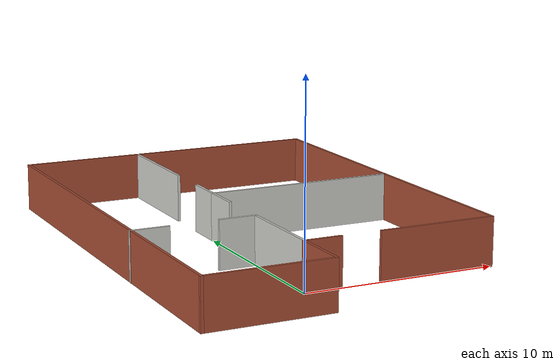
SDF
<?xml version='1.0'?>
<sdf version='1.6'>
  <model name='Building'>
    <pose frame=''>1.81588 8.675 0 0 -0 0</pose>
    <link name='Wall_30'>
      <collision name='Wall_30_Collision'>
        <geometry>
          <box>
            <size>10.15 0.15 2.5</size>
          </box>
        </geometry>
        <pose frame=''>0 0 1.25 0 -0 0</pose>
      </collision>
      <visual name='Wall_30_Visual'>
        <pose frame=''>0 0 1.25 0 -0 0</pose>
        <geometry>
          <box>
            <size>10.15 0.15 2.5</size>
          </box>
        </geometry>
        <material>
          <script>
            <uri>file://media/materials/scripts/gazebo.material</uri>
            <name>Gazebo/CeilingTiled</name>
          </script>
          <ambient>0.203922 0.396078 0.643137 1</ambient>
        </material>
        <meta>
          <layer>0</layer>
        </meta>
      </visual>
      <pose frame=''>3.18412 1.325 0 0 -0 0</pose>
    </link>
    <link name='Wall_34'>
      <collision name='Wall_34_Collision'>
        <geometry>
          <box>
            <size>10.15 0.15 2.5</size>
          </box>
        </geometry>
        <pose frame=''>0 0 1.25 0 -0 0</pose>
      </collision>
      <visual name='Wall_34_Visual'>
        <pose frame=''>0 0 1.25 0 -0 0</pose>
        <geometry>
          <box>
            <size>10.15 0.15 2.5</size>
          </box>
        </geometry>
        <material>
          <script>
            <uri>file://media/materials/scripts/gazebo.material</uri>
            <name>Gazebo/Bricks</name>
          </script>
          <ambient>1 1 1 1</ambient>
        </material>
        <meta>
          <layer>0</layer>
        </meta>
      </visual>
      <pose frame=''>8.18412 -3.675 0 0 -0 -1.5708</pose>
    </link>
    <link name='Wall_36'>
      <collision name='Wall_36_Collision'>
        <geometry>
          <box>
            <size>6.15 0.15 2.5</size>
          </box>
        </geometry>
        <pose frame=''>0 0 1.25 0 -0 0</pose>
      </collision>
      <visual name='Wall_36_Visual'>
        <pose frame=''>0 0 1.25 0 -0 0</pose>
        <geometry>
          <box>
            <size>6.15 0.15 2.5</size>
          </box>
        </geometry>
        <material>
          <script>
            <uri>file://media/materials/scripts/gazebo.material</uri>
            <name>Gazebo/Bricks</name>
          </script>
          <ambient>1 1 1 1</ambient>
        </material>
        <meta>
          <layer>0</layer>
        </meta>
      </visual>
      <pose frame=''>5.18412 -8.675 0 0 -0 3.14159</pose>
    </link>
    <link name='Wall_38'>
      <collision name='Wall_38_Collision'>
        <geometry>
          <box>
            <size>5.2029 0.15 2.5</size>
          </box>
        </geometry>
        <pose frame=''>0 0 1.25 0 -0 0</pose>
      </collision>
      <visual name='Wall_38_Visual'>
        <pose frame=''>0 0 1.25 0 -0 0</pose>
        <geometry>
          <box>
            <size>5.2029 0.15 2.5</size>
          </box>
        </geometry>
        <material>
          <script>
            <uri>file://media/materials/scripts/gazebo.material</uri>
            <name>Gazebo/CeilingTiled</name>
          </script>
          <ambient>0.203922 0.396078 0.643137 1</ambient>
        </material>
        <meta>
          <layer>0</layer>
        </meta>
      </visual>
      <pose frame=''>-1.81588 -6.14855 0 0 -0 1.5708</pose>
    </link>
    <link name='Wall_40'>
      <collision name='Wall_40_Collision'>
        <geometry>
          <box>
            <size>2 0.15 2.5</size>
          </box>
        </geometry>
        <pose frame=''>0 0 1.25 0 -0 0</pose>
      </collision>
      <visual name='Wall_40_Visual'>
        <pose frame=''>0 0 1.25 0 -0 0</pose>
        <geometry>
          <box>
            <size>2 0.15 2.5</size>
          </box>
        </geometry>
        <material>
          <script>
            <uri>file://media/materials/scripts/gazebo.material</uri>
            <name>Gazebo/Bricks</name>
          </script>
          <ambient>1 1 1 1</ambient>
        </material>
        <meta>
          <layer>0</layer>
        </meta>
      </visual>
      <pose frame=''>-0.890877 -8.675 0 0 -0 0</pose>
    </link>
    <link name='Wall_42'>
      <collision name='Wall_42_Collision'>
        <geometry>
          <box>
            <size>3.15 0.15 2.5</size>
          </box>
        </geometry>
        <pose frame=''>0 0 1.25 0 -0 0</pose>
      </collision>
      <visual name='Wall_42_Visual'>
        <pose frame=''>0 0 1.25 0 -0 0</pose>
        <geometry>
          <box>
            <size>3.15 0.15 2.5</size>
          </box>
        </geometry>
        <material>
          <script>
            <uri>file://media/materials/scripts/gazebo.material</uri>
            <name>Gazebo/Bricks</name>
          </script>
          <ambient>1 1 1 1</ambient>
        </material>
        <meta>
          <layer>0</layer>
        </meta>
      </visual>
      <pose frame=''>-1.81588 -10.175 0 0 -0 -1.5708</pose>
    </link>
    <link name='Wall_44'>
      <collision name='Wall_44_Collision'>
        <geometry>
          <box>
            <size>6.5 0.15 2.5</size>
          </box>
        </geometry>
        <pose frame=''>0 0 1.25 0 -0 0</pose>
      </collision>
      <visual name='Wall_44_Visual'>
        <pose frame=''>0 0 1.25 0 -0 0</pose>
        <geometry>
          <box>
            <size>6.5 0.15 2.5</size>
          </box>
        </geometry>
        <material>
          <script>
            <uri>file://media/materials/scripts/gazebo.material</uri>
            <name>Gazebo/Bricks</name>
          </script>
          <ambient>1 1 1 1</ambient>
        </material>
        <meta>
          <layer>0</layer>
        </meta>
      </visual>
      <pose frame=''>-4.99088 -11.675 0 0 -0 3.14159</pose>
    </link>
    <link name='Wall_45'>
      <collision name='Wall_45_Collision'>
        <geometry>
          <box>
            <size>23.5 0.15 2.5</size>
          </box>
        </geometry>
        <pose frame=''>0 0 1.25 0 -0 0</pose>
      </collision>
      <visual name='Wall_45_Visual'>
        <pose frame=''>0 0 1.25 0 -0 0</pose>
        <geometry>
          <box>
            <size>23.5 0.15 2.5</size>
          </box>
        </geometry>
        <material>
          <script>
            <uri>file://media/materials/scripts/gazebo.material</uri>
            <name>Gazebo/Bricks</name>
          </script>
          <ambient>1 1 1 1</ambient>
        </material>
        <meta>
          <layer>0</layer>
        </meta>
      </visual>
      <pose frame=''>-8.16588 0 0 0 -0 1.5708</pose>
    </link>
    <link name='Wall_47'>
      <collision name='Wall_47_Collision'>
        <geometry>
          <box>
            <size>2.15 0.15 2.5</size>
          </box>
        </geometry>
        <pose frame=''>0 0 1.25 0 -0 0</pose>
      </collision>
      <visual name='Wall_47_Visual'>
        <pose frame=''>0 0 1.25 0 -0 0</pose>
        <geometry>
          <box>
            <size>2.15 0.15 2.5</size>
          </box>
        </geometry>
        <material>
          <script>
            <uri>file://media/materials/scripts/gazebo.material</uri>
            <name>Gazebo/CeilingTiled</name>
          </script>
          <ambient>0.203922 0.396078 0.643137 1</ambient>
        </material>
        <meta>
          <layer>0</layer>
        </meta>
      </visual>
      <pose frame=''>-1.81588 0.325 0 0 -0 1.5708</pose>
    </link>
    <link name='Wall_49'>
      <collision name='Wall_49_Collision'>
        <geometry>
          <box>
            <size>2 0.15 2.5</size>
          </box>
        </geometry>
        <pose frame=''>0 0 1.25 0 -0 0</pose>
      </collision>
      <visual name='Wall_49_Visual'>
        <pose frame=''>0 0 1.25 0 -0 0</pose>
        <geometry>
          <box>
            <size>2 0.15 2.5</size>
          </box>
        </geometry>
        <material>
          <script>
            <uri>file://media/materials/scripts/gazebo.material</uri>
            <name>Gazebo/CeilingTiled</name>
          </script>
          <ambient>0.203922 0.396078 0.643137 1</ambient>
        </material>
        <meta>
          <layer>0</layer>
        </meta>
      </visual>
      <pose frame=''>-7.25912 -3.70088 0 0 -0 0</pose>
    </link>
    <link name='Wall_51'>
      <collision name='Wall_51_Collision'>
        <geometry>
          <box>
            <size>2 0.15 2.5</size>
          </box>
        </geometry>
        <pose frame=''>0 0 1.25 0 -0 0</pose>
      </collision>
      <visual name='Wall_51_Visual'>
        <pose frame=''>0 0 1.25 0 -0 0</pose>
        <geometry>
          <box>
            <size>2 0.15 2.5</size>
          </box>
        </geometry>
        <material>
          <script>
            <uri>file://media/materials/scripts/gazebo.material</uri>
            <name>Gazebo/CeilingTiled</name>
          </script>
          <ambient>0.203922 0.396078 0.643137 1</ambient>
        </material>
        <meta>
          <layer>0</layer>
        </meta>
      </visual>
      <pose frame=''>-2.74088 -3.6221 0 0 -0 3.14159</pose>
    </link>
    <link name='Wall_53'>
      <collision name='Wall_53_Collision'>
        <geometry>
          <box>
            <size>2.15 0.15 2.5</size>
          </box>
        </geometry>
        <pose frame=''>0 0 1.25 0 -0 0</pose>
      </collision>
      <visual name='Wall_53_Visual'>
        <pose frame=''>0 0 1.25 0 -0 0</pose>
        <geometry>
          <box>
            <size>2.15 0.15 2.5</size>
          </box>
        </geometry>
        <material>
          <script>
            <uri>file://media/materials/scripts/gazebo.material</uri>
            <name>Gazebo/CeilingTiled</name>
          </script>
          <ambient>0.203922 0.396078 0.643137 1</ambient>
        </material>
        <meta>
          <layer>0</layer>
        </meta>
      </visual>
      <pose frame=''>-1.81588 2.325 0 0 -0 1.5708</pose>
    </link>
    <link name='Wall_55'>
      <collision name='Wall_55_Collision'>
        <geometry>
          <box>
            <size>16.5 0.15 2.5</size>
          </box>
        </geometry>
        <pose frame=''>0 0 1.25 0 -0 0</pose>
      </collision>
      <visual name='Wall_55_Visual'>
        <pose frame=''>0 0 1.25 0 -0 0</pose>
        <geometry>
          <box>
            <size>16.5 0.15 2.5</size>
          </box>
        </geometry>
        <material>
          <script>
            <uri>file://media/materials/scripts/gazebo.material</uri>
            <name>Gazebo/Bricks</name>
          </script>
          <ambient>1 1 1 1</ambient>
        </material>
        <meta>
          <layer>0</layer>
        </meta>
      </visual>
      <pose frame=''>0.009123 11.675 0 0 -0 0</pose>
    </link>
    <link name='Wall_57'>
      <collision name='Wall_57_Collision'>
        <geometry>
          <box>
            <size>10.5 0.15 2.5</size>
          </box>
        </geometry>
        <pose frame=''>0 0 1.25 0 -0 0</pose>
      </collision>
      <visual name='Wall_57_Visual'>
        <pose frame=''>0 0 1.25 0 -0 0</pose>
        <geometry>
          <box>
            <size>10.5 0.15 2.5</size>
          </box>
        </geometry>
        <material>
          <script>
            <uri>file://media/materials/scripts/gazebo.material</uri>
            <name>Gazebo/Bricks</name>
          </script>
          <ambient>1 1 1 1</ambient>
        </material>
        <meta>
          <layer>0</layer>
        </meta>
      </visual>
      <pose frame=''>8.18412 6.5 0 0 -0 1.5708</pose>
    </link>
    <link name='Wall_59'>
      <collision name='Wall_59_Collision'>
        <geometry>
          <box>
            <size>5.9 0.15 2.5</size>
          </box>
        </geometry>
        <pose frame=''>0 0 1.25 0 -0 0</pose>
      </collision>
      <visual name='Wall_59_Visual'>
        <pose frame=''>0 0 1.25 0 -0 0</pose>
        <geometry>
          <box>
            <size>5.9 0.15 2.5</size>
          </box>
        </geometry>
        <material>
          <script>
            <uri>file://media/materials/scripts/gazebo.material</uri>
            <name>Gazebo/CeilingTiled</name>
          </script>
          <ambient>0.203922 0.396078 0.643137 1</ambient>
        </material>
        <meta>
          <layer>0</layer>
        </meta>
      </visual>
      <pose frame=''>-1.81588 8.7 0 0 -0 -1.5708</pose>
    </link>
    <static>1</static>
  </model>
</sdf>
